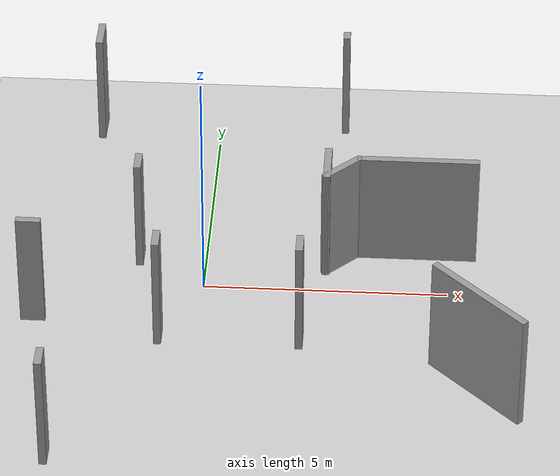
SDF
<sdf version="1.6">
 <world name="default">
  <model name="ground_plane">
   <static>1</static>
   <link name="link">
    <collision name="collision">
     <geometry><plane><normal>0 0 1</normal><size>100 100</size></plane></geometry>
     <surface><friction><ode><mu>100</mu><mu2>50</mu2></ode></friction></surface>
    </collision>
    <visual name="visual">
     <cast_shadows>0</cast_shadows>
     <geometry><plane><normal>0 0 1</normal><size>100 100</size></plane></geometry>
     <material>
      <script><uri>file://media/materials/scripts/gazebo.material</uri><name>Gazebo/Grey</name></script>
     </material>
    </visual>
   </link>
  </model>
  <model name="Untitled_2">
   <pose>1.45053 0.08 0 0 -0 0</pose>
   <link name="Wall_10">
    <collision name="Wall_10_Collision">
     <geometry><box><size>0.5 0.15 2.5</size></box></geometry>
     <pose>0 0 1.25 0 -0 0</pose>
    </collision>
    <visual name="Wall_10_Visual">
     <pose>0 0 1.25 0 -0 0</pose>
     <geometry><box><size>0.5 0.15 2.5</size></box></geometry>
     <material>
      <script><uri>file://media/materials/scripts/gazebo.material</uri><name>Gazebo/Grey</name></script>
      <ambient>1 1 1 1</ambient>
     </material>
    </visual>
    <pose>-4.13053 -5.535 0 0 -0 1.5708</pose>
   </link>
   <link name="Wall_12">
    <collision name="Wall_12_Collision">
     <geometry><box><size>0.5 0.15 2.5</size></box></geometry>
     <pose>0 0 1.25 0 -0 0</pose>
    </collision>
    <visual name="Wall_12_Visual">
     <pose>0 0 1.25 0 -0 0</pose>
     <geometry><box><size>0.5 0.15 2.5</size></box></geometry>
     <material>
      <script><uri>file://media/materials/scripts/gazebo.material</uri><name>Gazebo/Grey</name></script>
      <ambient>1 1 1 1</ambient>
     </material>
    </visual>
    <pose>-2.25053 -1.755 0 0 -0 1.5708</pose>
   </link>
   <link name="Wall_14">
    <collision name="Wall_14_Collision">
     <geometry><box><size>0.5 0.15 2.5</size></box></geometry>
     <pose>0 0 1.25 0 -0 0</pose>
    </collision>
    <visual name="Wall_14_Visual">
     <pose>0 0 1.25 0 -0 0</pose>
     <geometry><box><size>0.5 0.15 2.5</size></box></geometry>
     <material>
      <script><uri>file://media/materials/scripts/gazebo.material</uri><name>Gazebo/Grey</name></script>
      <ambient>1 1 1 1</ambient>
     </material>
    </visual>
    <pose>0.599467 -1.755 0 0 -0 1.5708</pose>
   </link>
   <link name="Wall_18">
    <collision name="Wall_18_Collision">
     <geometry><box><size>2.5 0.15 2.5</size></box></geometry>
     <pose>0 0 1.25 0 -0 0</pose>
    </collision>
    <visual name="Wall_18_Visual">
     <pose>0 0 1.25 0 -0 0</pose>
     <geometry><box><size>2.5 0.15 2.5</size></box></geometry>
     <material>
      <script><uri>file://media/materials/scripts/gazebo.material</uri><name>Gazebo/Grey</name></script>
      <ambient>1 1 1 1</ambient>
     </material>
    </visual>
    <pose>2.87447 1.16 0 0 -0 3.14159</pose>
   </link>
   <link name="Wall_2">
    <collision name="Wall_2_Collision">
     <geometry><box><size>0.75 0.15 2.5</size></box></geometry>
     <pose>0 0 1.25 0 -0 0</pose>
    </collision>
    <visual name="Wall_2_Visual">
     <pose>0 0 1.25 0 -0 0</pose>
     <geometry><box><size>0.75 0.15 2.5</size></box></geometry>
     <material>
      <script><uri>file://media/materials/scripts/gazebo.material</uri><name>Gazebo/Grey</name></script>
      <ambient>1 1 1 1</ambient>
     </material>
    </visual>
    <pose>-4.05053 5.41 0 0 0 -1.5708</pose>
   </link>
   <link name="Wall_25">
    <collision name="Wall_25_Collision">
     <geometry><box><size>2.5 0.15 2.5</size></box></geometry>
     <pose>0 0 1.25 0 -0 0</pose>
    </collision>
    <visual name="Wall_25_Visual">
     <pose>0 0 1.25 0 -0 0</pose>
     <geometry><box><size>2.5 0.15 2.5</size></box></geometry>
     <material>
      <script><uri>file://media/materials/scripts/gazebo.material</uri><name>Gazebo/Grey</name></script>
      <ambient>1 1 1 1</ambient>
     </material>
    </visual>
    <pose>4.14862 -3.13915 0 0 -0 2.35619</pose>
   </link>
   <link name="Wall_27">
    <collision name="Wall_27_Collision">
     <geometry><box><size>0.25 0.15 2.5</size></box></geometry>
     <pose>0 0 1.25 0 -0 0</pose>
    </collision>
    <visual name="Wall_27_Visual">
     <pose>0 0 1.25 0 -0 0</pose>
     <geometry><box><size>0.25 0.15 2.5</size></box></geometry>
     <material>
      <script><uri>file://media/materials/scripts/gazebo.material</uri><name>Gazebo/Grey</name></script>
      <ambient>1 1 1 1</ambient>
     </material>
    </visual>
    <pose>1.23947 5.64 0 0 0 -1.5708</pose>
   </link>
   <link name="Wall_4">
    <collision name="Wall_4_Collision">
     <geometry><box><size>0.5 0.15 2.5</size></box></geometry>
     <pose>0 0 1.25 0 -0 0</pose>
    </collision>
    <visual name="Wall_4_Visual">
     <pose>0 0 1.25 0 -0 0</pose>
     <geometry><box><size>0.5 0.15 2.5</size></box></geometry>
     <material>
      <script><uri>file://media/materials/scripts/gazebo.material</uri><name>Gazebo/Grey</name></script>
      <ambient>1 1 1 1</ambient>
     </material>
    </visual>
    <pose>-4.83553 -1.31 0 0 -0 0</pose>
   </link>
   <link name="Wall_6">
    <collision name="Wall_6_Collision">
     <geometry><box><size>0.5 0.15 2.5</size></box></geometry>
     <pose>0 0 1.25 0 -0 0</pose>
    </collision>
    <visual name="Wall_6_Visual">
     <pose>0 0 1.25 0 -0 0</pose>
     <geometry><box><size>0.5 0.15 2.5</size></box></geometry>
     <material>
      <script><uri>file://media/materials/scripts/gazebo.material</uri><name>Gazebo/Grey</name></script>
      <ambient>1 1 1 1</ambient>
     </material>
    </visual>
    <pose>-2.83053 0.805 0 0 0 -1.5708</pose>
   </link>
   <static>1</static>
  </model>
  <model name="Untitled">
   <pose>2.78052 1.02947 0 0 -0 0</pose>
   <link name="Wall_0">
    <collision name="Wall_0_Collision">
     <geometry><box><size>1 0.15 2.5</size></box></geometry>
     <pose>0 0 1.25 0 -0 0</pose>
    </collision>
    <visual name="Wall_0_Visual">
     <pose>0 0 1.25 0 -0 0</pose>
     <geometry><box><size>1 0.15 2.5</size></box></geometry>
     <material>
      <script><uri>file://media/materials/scripts/gazebo.material</uri><name>Gazebo/Grey</name></script>
      <ambient>1 1 1 1</ambient>
     </material>
    </visual>
    <pose>0 -0.108947 0 0 -0 0.785398</pose>
   </link>
   <link name="Wall_2">
    <collision name="Wall_2_Collision">
     <geometry><box><size>1 0.15 2.5</size></box></geometry>
     <pose>0 0 1.25 0 -0 0</pose>
    </collision>
    <visual name="Wall_2_Visual">
     <pose>0 0 1.25 0 -0 0</pose>
     <geometry><box><size>1 0.15 2.5</size></box></geometry>
     <material>
      <script><uri>file://media/materials/scripts/gazebo.material</uri><name>Gazebo/Grey</name></script>
      <ambient>1 1 1 1</ambient>
     </material>
    </visual>
    <pose>-0.30052 0.015533 0 0 -0 1.5708</pose>
   </link>
   <static>1</static>
  </model>
 </world>
</sdf>
